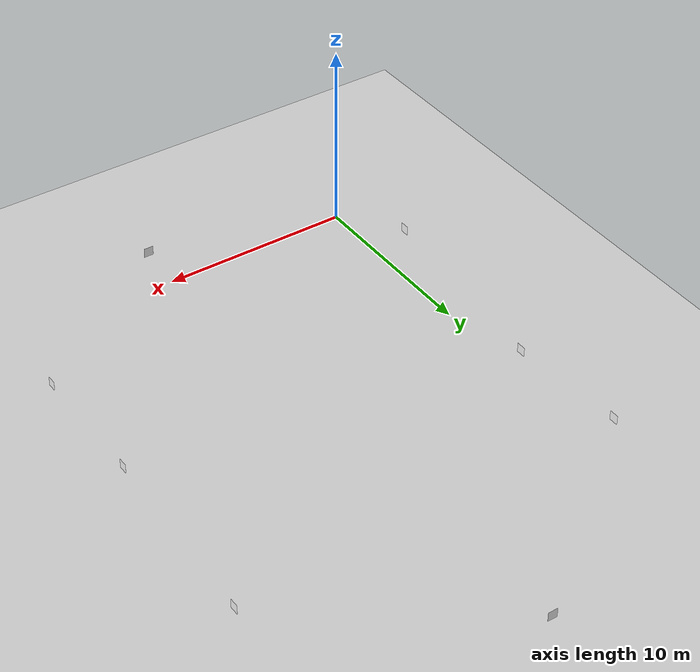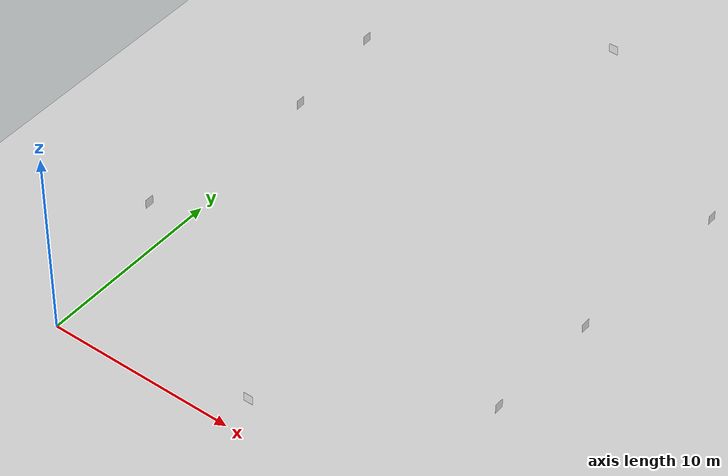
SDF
<sdf version="1.6">
 <world name="default">
  <light name="sun" type="directional">
   <pose>0 0 10 0 -0 0</pose>
   <diffuse>0.8 0.8 0.8 1</diffuse>
   <specular>0.1 0.1 0.1 1</specular>
   <attenuation>
    <range>1000</range>
    <constant>0.9</constant>
    <linear>0.01</linear>
    <quadratic>0.001</quadratic>
   </attenuation>
   <direction>-0.5 0.5 -1</direction>
  </light>
  <model name="ground_plane">
   <static>1</static>
   <link name="link">
    <collision name="collision">
     <geometry><plane><normal>0 0 1</normal><size>100 100</size></plane></geometry>
     <surface><friction><ode><mu>100</mu><mu2>50</mu2></ode></friction></surface>
    </collision>
    <visual name="visual">
     <cast_shadows>0</cast_shadows>
     <geometry><plane><normal>0 0 1</normal><size>100 100</size></plane></geometry>
     <material>
      <script><uri>file://media/materials/scripts/gazebo.material</uri><name>Gazebo/Grey</name></script>
     </material>
    </visual>
   </link>
  </model>
  <gravity>0 0 -9.8</gravity>
  <magnetic_field>6e-06 2.3e-05 -4.2e-05</magnetic_field>
  <atmosphere type="adiabatic"/>
  <physics name="default_physics" default="0" type="ode">
   <max_step_size>0.001</max_step_size>
   <real_time_factor>1</real_time_factor>
   <real_time_update_rate>1000</real_time_update_rate>
  </physics>
  <scene><ambient>0.4 0.4 0.4 1</ambient><background>0.7 0.7 0.7 1</background><shadows>1</shadows></scene>
  <spherical_coordinates>
   <surface_model>EARTH_WGS84</surface_model>
   <latitude_deg>0</latitude_deg>
   <longitude_deg>0</longitude_deg>
   <elevation>0</elevation>
   <heading_deg>0</heading_deg>
  </spherical_coordinates>
  <model name="aruco_visual_marker_0">
   <link name="marker">
    <visual name="visual">
     <geometry><box><size>0.5 0.5 1e-05</size></box></geometry>
     <material>
      <script>
       <uri>model://aruco_visual_marker_0/materials/scripts</uri>
       <uri>model://aruco_visual_marker_0/materials/textures</uri>
       <name>ArucoVisualMarker0/Marker</name>
      </script>
      <ambient>1 1 1 1</ambient>
      <diffuse>1 1 1 1</diffuse>
      <specular>0 0 0 1</specular>
      <emissive>1 1 1 0</emissive>
      <shader type="vertex"><normal_map>__default__</normal_map></shader>
     </material>
    </visual>
    <collision name="collision"><geometry><box><size>0.5 0.5 1e-05</size></box></geometry></collision>
   </link>
   <link name="marker_pad">
    <pose frame="marker">0 0 -1e-05 0 -0 0</pose>
    <visual name="visual">
     <geometry><box><size>1e-05 1e-05 1e-05</size></box></geometry>
     <material>
      <lighting>1</lighting>
      <script><uri>file://media/materials/scripts/gazebo.material</uri><name>Gazebo/White</name></script>
      <ambient>0.3 0.3 0.3 1</ambient>
      <diffuse>0.7 0.7 0.7 1</diffuse>
      <specular>0.01 0.01 0.01 1</specular>
      <emissive>1 1 1 0</emissive>
      <shader type="vertex"><normal_map>__default__</normal_map></shader>
     </material>
    </visual>
    <collision name="collision"><geometry><box><size>0.5 0.5 1e-05</size></box></geometry></collision>
   </link>
   <joint name="marker_JOINT_marker_pad" type="revolute">
    <parent>marker</parent>
    <child>marker_pad</child>
    <axis>
     <xyz>0 0 1</xyz>
     <limit><upper>0</upper><lower>0</lower></limit>
     <use_parent_model_frame>0</use_parent_model_frame>
     <dynamics><spring_reference>0</spring_reference><spring_stiffness>0</spring_stiffness></dynamics>
    </axis>
   </joint>
   <static>1</static>
   <pose>11.267 0.075562 2.48164 1.57079 -1.57079 3.14159</pose>
  </model>
  <model name="aruco_visual_marker_1">
   <link name="marker">
    <visual name="visual">
     <geometry><box><size>0.5 0.5 1e-05</size></box></geometry>
     <material>
      <script>
       <uri>model://aruco_visual_marker_1/materials/scripts</uri>
       <uri>model://aruco_visual_marker_1/materials/textures</uri>
       <name>ArucoVisualMarker1/Marker</name>
      </script>
      <ambient>1 1 1 1</ambient>
      <diffuse>1 1 1 1</diffuse>
      <specular>0 0 0 1</specular>
      <emissive>1 1 1 0</emissive>
      <shader type="vertex"><normal_map>__default__</normal_map></shader>
     </material>
    </visual>
    <collision name="collision"><geometry><box><size>0.5 0.5 1e-05</size></box></geometry></collision>
   </link>
   <link name="marker_pad">
    <pose frame="marker">0 0 -1e-05 0 -0 0</pose>
    <visual name="visual">
     <geometry><box><size>1e-05 1e-05 1e-05</size></box></geometry>
     <material>
      <lighting>1</lighting>
      <script><uri>file://media/materials/scripts/gazebo.material</uri><name>Gazebo/White</name></script>
      <ambient>0.3 0.3 0.3 1</ambient>
      <diffuse>0.7 0.7 0.7 1</diffuse>
      <specular>0.01 0.01 0.01 1</specular>
      <emissive>1 1 1 0</emissive>
      <shader type="vertex"><normal_map>__default__</normal_map></shader>
     </material>
    </visual>
    <collision name="collision"><geometry><box><size>0.5 0.5 1e-05</size></box></geometry></collision>
   </link>
   <joint name="marker_JOINT_marker_pad" type="revolute">
    <parent>marker</parent>
    <child>marker_pad</child>
    <axis>
     <xyz>0 0 1</xyz>
     <limit><upper>0</upper><lower>0</lower></limit>
     <use_parent_model_frame>0</use_parent_model_frame>
     <dynamics><spring_reference>0</spring_reference><spring_stiffness>0</spring_stiffness></dynamics>
    </axis>
   </joint>
   <static>1</static>
   <pose>20.2011 22.3747 1.94795 -3.14159 -1.57079 -3.14159</pose>
  </model>
  <model name="aruco_visual_marker_2">
   <link name="marker">
    <visual name="visual">
     <geometry><box><size>0.5 0.5 1e-05</size></box></geometry>
     <material>
      <script>
       <uri>model://aruco_visual_marker_2/materials/scripts</uri>
       <uri>model://aruco_visual_marker_2/materials/textures</uri>
       <name>ArucoVisualMarker2/Marker</name>
      </script>
      <ambient>1 1 1 1</ambient>
      <diffuse>1 1 1 1</diffuse>
      <specular>0 0 0 1</specular>
      <emissive>1 1 1 0</emissive>
      <shader type="vertex"><normal_map>__default__</normal_map></shader>
     </material>
    </visual>
    <collision name="collision"><geometry><box><size>0.5 0.5 1e-05</size></box></geometry></collision>
   </link>
   <link name="marker_pad">
    <pose frame="marker">0 0 -1e-05 0 -0 0</pose>
    <visual name="visual">
     <geometry><box><size>1e-05 1e-05 1e-05</size></box></geometry>
     <material>
      <lighting>1</lighting>
      <script><uri>file://media/materials/scripts/gazebo.material</uri><name>Gazebo/White</name></script>
      <ambient>0.3 0.3 0.3 1</ambient>
      <diffuse>0.7 0.7 0.7 1</diffuse>
      <specular>0.01 0.01 0.01 1</specular>
      <emissive>1 1 1 0</emissive>
      <shader type="vertex"><normal_map>__default__</normal_map></shader>
     </material>
    </visual>
    <collision name="collision"><geometry><box><size>0.5 0.5 1e-05</size></box></geometry></collision>
   </link>
   <joint name="marker_JOINT_marker_pad" type="revolute">
    <parent>marker</parent>
    <child>marker_pad</child>
    <axis>
     <xyz>0 0 1</xyz>
     <limit><upper>0</upper><lower>0</lower></limit>
     <use_parent_model_frame>0</use_parent_model_frame>
     <dynamics><spring_reference>0</spring_reference><spring_stiffness>0</spring_stiffness></dynamics>
    </axis>
   </joint>
   <static>1</static>
   <pose>0.189229 6.33126 3.15027 -3e-06 -1.57079 3.14159</pose>
  </model>
  <model name="aruco_visual_marker_3">
   <link name="marker">
    <visual name="visual">
     <geometry><box><size>0.5 0.5 1e-05</size></box></geometry>
     <material>
      <script>
       <uri>model://aruco_visual_marker_3/materials/scripts</uri>
       <uri>model://aruco_visual_marker_3/materials/textures</uri>
       <name>ArucoVisualMarker3/Marker</name>
      </script>
      <ambient>1 1 1 1</ambient>
      <diffuse>1 1 1 1</diffuse>
      <specular>0 0 0 1</specular>
      <emissive>1 1 1 0</emissive>
      <shader type="vertex"><normal_map>__default__</normal_map></shader>
     </material>
    </visual>
    <collision name="collision"><geometry><box><size>0.5 0.5 1e-05</size></box></geometry></collision>
   </link>
   <link name="marker_pad">
    <pose frame="marker">0 0 -1e-05 0 -0 0</pose>
    <visual name="visual">
     <geometry><box><size>1e-05 1e-05 1e-05</size></box></geometry>
     <material>
      <lighting>1</lighting>
      <script><uri>file://media/materials/scripts/gazebo.material</uri><name>Gazebo/White</name></script>
      <ambient>0.3 0.3 0.3 1</ambient>
      <diffuse>0.7 0.7 0.7 1</diffuse>
      <specular>0.01 0.01 0.01 1</specular>
      <emissive>1 1 1 0</emissive>
      <shader type="vertex"><normal_map>__default__</normal_map></shader>
     </material>
    </visual>
    <collision name="collision"><geometry><box><size>0.5 0.5 1e-05</size></box></geometry></collision>
   </link>
   <joint name="marker_JOINT_marker_pad" type="revolute">
    <parent>marker</parent>
    <child>marker_pad</child>
    <axis>
     <xyz>0 0 1</xyz>
     <limit><upper>0</upper><lower>0</lower></limit>
     <use_parent_model_frame>0</use_parent_model_frame>
     <dynamics><spring_reference>0</spring_reference><spring_stiffness>0</spring_stiffness></dynamics>
    </axis>
   </joint>
   <static>1</static>
   <pose>9.48369 29.7675 1.60322 -1.57554 -1.57079 -3.13686</pose>
  </model>
  <model name="aruco_grande_4">
   <link name="marker">
    <visual name="visual">
     <geometry><box><size>0.5 0.5 1e-05</size></box></geometry>
     <material>
      <script>
       <uri>model://aruco_visual_marker_4/materials/scripts</uri>
       <uri>model://aruco_visual_marker_4/materials/textures</uri>
       <name>ArucoVisualMarker4/Marker</name>
      </script>
      <ambient>1 1 1 1</ambient>
      <diffuse>1 1 1 1</diffuse>
      <specular>0 0 0 1</specular>
      <emissive>1 1 1 0</emissive>
      <shader type="vertex"><normal_map>__default__</normal_map></shader>
     </material>
    </visual>
    <collision name="collision"><geometry><box><size>0.5 0.5 1e-05</size></box></geometry></collision>
   </link>
   <link name="marker_pad">
    <pose frame="marker">0 0 -1e-05 0 -0 0</pose>
    <visual name="visual">
     <geometry><box><size>1e-05 1e-05 1e-05</size></box></geometry>
     <material>
      <lighting>1</lighting>
      <script><uri>file://media/materials/scripts/gazebo.material</uri><name>Gazebo/White</name></script>
      <ambient>0.3 0.3 0.3 1</ambient>
      <diffuse>0.7 0.7 0.7 1</diffuse>
      <specular>0.01 0.01 0.01 1</specular>
      <emissive>1 1 1 0</emissive>
      <shader type="vertex"><normal_map>__default__</normal_map></shader>
     </material>
    </visual>
    <collision name="collision"><geometry><box><size>0.5 0.5 1e-05</size></box></geometry></collision>
   </link>
   <joint name="marker_JOINT_marker_pad" type="revolute">
    <parent>marker</parent>
    <child>marker_pad</child>
    <axis>
     <xyz>0 0 1</xyz>
     <limit><upper>0</upper><lower>0</lower></limit>
     <use_parent_model_frame>0</use_parent_model_frame>
     <dynamics><spring_reference>0</spring_reference><spring_stiffness>0</spring_stiffness></dynamics>
    </axis>
   </joint>
   <static>1</static>
   <pose>0.750522 16.4511 2.52673 -3e-06 -1.57079 3.14159</pose>
  </model>
  <model name="aruco_grande_5">
   <link name="marker">
    <visual name="visual">
     <geometry><box><size>0.5 0.5 1e-05</size></box></geometry>
     <material>
      <script>
       <uri>model://aruco_visual_marker_5/materials/scripts</uri>
       <uri>model://aruco_visual_marker_5/materials/textures</uri>
       <name>ArucoVisualMarker5/Marker</name>
      </script>
      <ambient>1 1 1 1</ambient>
      <diffuse>1 1 1 1</diffuse>
      <specular>0 0 0 1</specular>
      <emissive>1 1 1 0</emissive>
      <shader type="vertex"><normal_map>__default__</normal_map></shader>
     </material>
    </visual>
    <collision name="collision"><geometry><box><size>0.5 0.5 1e-05</size></box></geometry></collision>
   </link>
   <link name="marker_pad">
    <pose frame="marker">0 0 -1e-05 0 -0 0</pose>
    <visual name="visual">
     <geometry><box><size>1e-05 1e-05 1e-05</size></box></geometry>
     <material>
      <lighting>1</lighting>
      <script><uri>file://media/materials/scripts/gazebo.material</uri><name>Gazebo/White</name></script>
      <ambient>0.3 0.3 0.3 1</ambient>
      <diffuse>0.7 0.7 0.7 1</diffuse>
      <specular>0.01 0.01 0.01 1</specular>
      <emissive>1 1 1 0</emissive>
      <shader type="vertex"><normal_map>__default__</normal_map></shader>
     </material>
    </visual>
    <collision name="collision"><geometry><box><size>0.5 0.5 1e-05</size></box></geometry></collision>
   </link>
   <joint name="marker_JOINT_marker_pad" type="revolute">
    <parent>marker</parent>
    <child>marker_pad</child>
    <axis>
     <xyz>0 0 1</xyz>
     <limit><upper>0</upper><lower>0</lower></limit>
     <use_parent_model_frame>0</use_parent_model_frame>
     <dynamics><spring_reference>0</spring_reference><spring_stiffness>0</spring_stiffness></dynamics>
    </axis>
   </joint>
   <static>1</static>
   <pose>20.0078 6.35643 2.49722 3.14159 -1.57079 3.14159</pose>
  </model>
  <model name="aruco_grande_6">
   <link name="marker">
    <visual name="visual">
     <geometry><box><size>0.5 0.5 1e-05</size></box></geometry>
     <material>
      <script>
       <uri>model://aruco_visual_marker_6/materials/scripts</uri>
       <uri>model://aruco_visual_marker_6/materials/textures</uri>
       <name>ArucoVisualMarker6/Marker</name>
      </script>
      <ambient>1 1 1 1</ambient>
      <diffuse>1 1 1 1</diffuse>
      <specular>0 0 0 1</specular>
      <emissive>1 1 1 0</emissive>
      <shader type="vertex"><normal_map>__default__</normal_map></shader>
     </material>
    </visual>
    <collision name="collision"><geometry><box><size>0.5 0.5 1e-05</size></box></geometry></collision>
   </link>
   <link name="marker_pad">
    <pose frame="marker">0 0 -1e-05 0 -0 0</pose>
    <visual name="visual">
     <geometry><box><size>1e-05 1e-05 1e-05</size></box></geometry>
     <material>
      <lighting>1</lighting>
      <script><uri>file://media/materials/scripts/gazebo.material</uri><name>Gazebo/White</name></script>
      <ambient>0.3 0.3 0.3 1</ambient>
      <diffuse>0.7 0.7 0.7 1</diffuse>
      <specular>0.01 0.01 0.01 1</specular>
      <emissive>1 1 1 0</emissive>
      <shader type="vertex"><normal_map>__default__</normal_map></shader>
     </material>
    </visual>
    <collision name="collision"><geometry><box><size>0.5 0.5 1e-05</size></box></geometry></collision>
   </link>
   <joint name="marker_JOINT_marker_pad" type="revolute">
    <parent>marker</parent>
    <child>marker_pad</child>
    <axis>
     <xyz>0 0 1</xyz>
     <limit><upper>0</upper><lower>0</lower></limit>
     <use_parent_model_frame>0</use_parent_model_frame>
     <dynamics><spring_reference>0</spring_reference><spring_stiffness>0</spring_stiffness></dynamics>
    </axis>
   </joint>
   <static>1</static>
   <pose>0.072196 22.3501 2.28208 -3e-06 -1.57079 3.14159</pose>
  </model>
  <model name="aruco_grande_7">
   <link name="marker">
    <visual name="visual">
     <geometry><box><size>0.5 0.5 1e-05</size></box></geometry>
     <material>
      <script>
       <uri>model://aruco_visual_marker_7/materials/scripts</uri>
       <uri>model://aruco_visual_marker_7/materials/textures</uri>
       <name>ArucoVisualMarker7/Marker</name>
      </script>
      <ambient>1 1 1 1</ambient>
      <diffuse>1 1 1 1</diffuse>
      <specular>0 0 0 1</specular>
      <emissive>1 1 1 0</emissive>
      <shader type="vertex"><normal_map>__default__</normal_map></shader>
     </material>
    </visual>
    <collision name="collision"><geometry><box><size>0.5 0.5 1e-05</size></box></geometry></collision>
   </link>
   <link name="marker_pad">
    <pose frame="marker">0 0 -1e-05 0 -0 0</pose>
    <visual name="visual">
     <geometry><box><size>1e-05 1e-05 1e-05</size></box></geometry>
     <material>
      <lighting>1</lighting>
      <script><uri>file://media/materials/scripts/gazebo.material</uri><name>Gazebo/White</name></script>
      <ambient>0.3 0.3 0.3 1</ambient>
      <diffuse>0.7 0.7 0.7 1</diffuse>
      <specular>0.01 0.01 0.01 1</specular>
      <emissive>1 1 1 0</emissive>
      <shader type="vertex"><normal_map>__default__</normal_map></shader>
     </material>
    </visual>
    <collision name="collision"><geometry><box><size>0.5 0.5 1e-05</size></box></geometry></collision>
   </link>
   <joint name="marker_JOINT_marker_pad" type="revolute">
    <parent>marker</parent>
    <child>marker_pad</child>
    <axis>
     <xyz>0 0 1</xyz>
     <limit><upper>0</upper><lower>0</lower></limit>
     <use_parent_model_frame>0</use_parent_model_frame>
     <dynamics><spring_reference>0</spring_reference><spring_stiffness>0</spring_stiffness></dynamics>
    </axis>
   </joint>
   <static>1</static>
   <pose>19.9484 12.8013 2.27871 3.14159 -1.57079 3.14159</pose>
  </model>
 </world>
</sdf>
